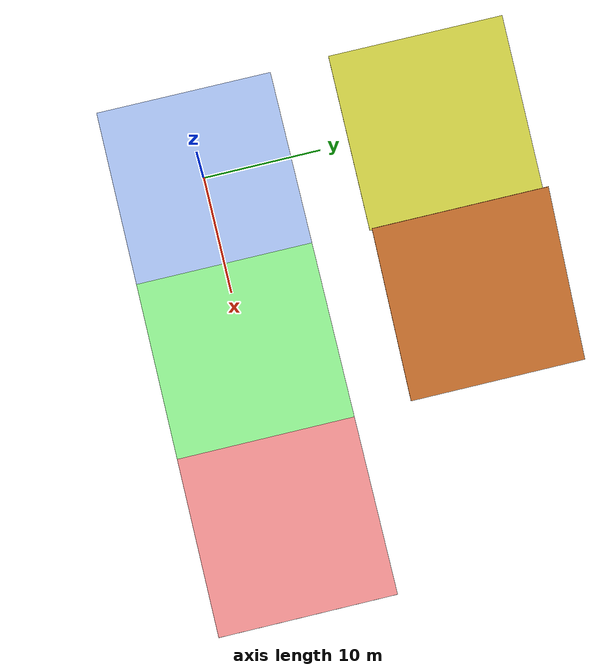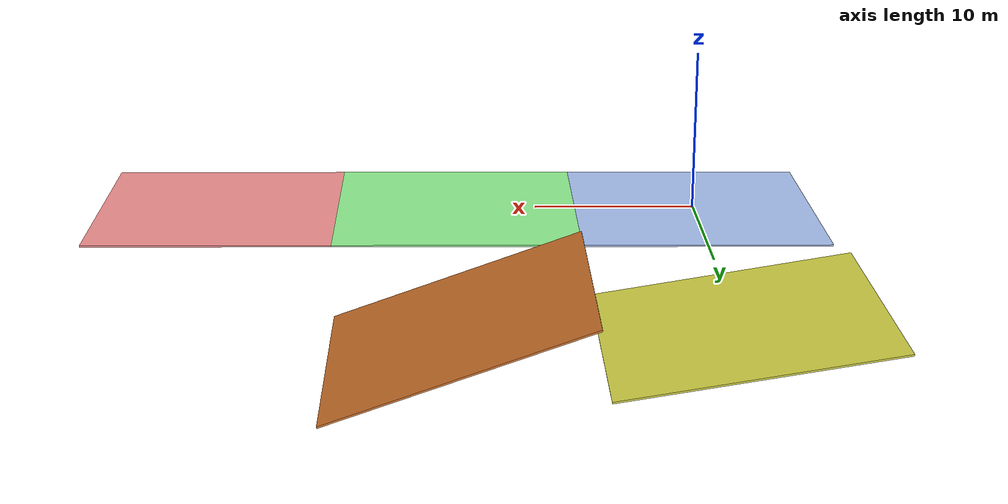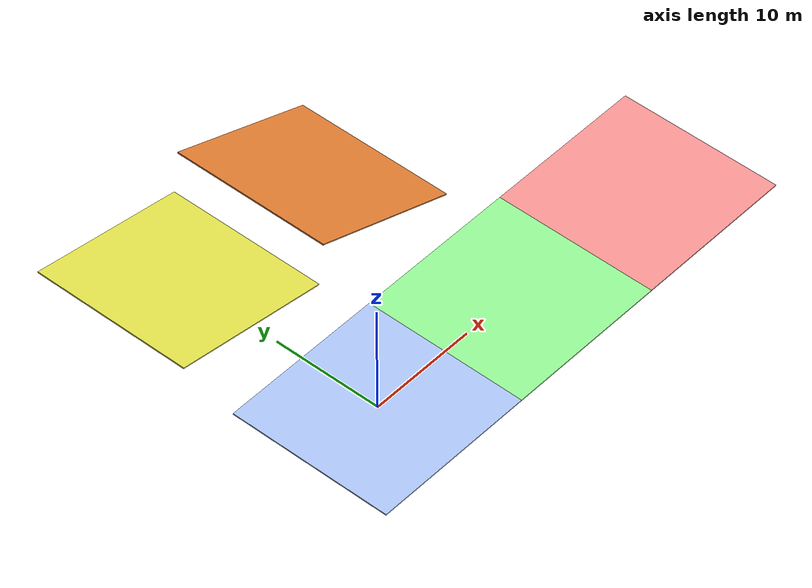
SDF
<sdf version="1.9">
 <world name="variable_friction_world">
  <include><uri>https://fuel.gazebosim.org/1.0/openrobotics/models/Sun</uri></include>
  <model name="low_friction_area">
   <static>true</static>
   <link name="ground_low">
    <collision name="collision">
     <geometry><box><size>15 15 0.1</size></box></geometry>
     <surface><friction><ode><mu>0.1</mu><mu2>0.1</mu2></ode></friction></surface>
    </collision>
    <visual name="visual">
     <geometry><box><size>15 15 0.1</size></box></geometry>
     <material><diffuse>0.7 0.8 1 1</diffuse></material>
    </visual>
   </link>
  </model>
  <model name="medium_friction_area">
   <static>true</static>
   <pose>15 0 0 0 0 0</pose>
   <link name="ground_mid">
    <collision name="collision">
     <geometry><box><size>15 15 0.1</size></box></geometry>
     <surface><friction><ode><mu>0.5</mu><mu2>0.5</mu2></ode></friction></surface>
    </collision>
    <visual name="visual">
     <geometry><box><size>15 15 0.1</size></box></geometry>
     <material><diffuse>0.6 1 0.6 1</diffuse></material>
    </visual>
   </link>
  </model>
  <model name="high_friction_area">
   <static>true</static>
   <pose>30 0 0 0 0 0</pose>
   <link name="ground_high">
    <collision name="collision">
     <geometry><box><size>15 15 0.1</size></box></geometry>
     <surface><friction><ode><mu>1.0</mu><mu2>1.0</mu2></ode></friction></surface>
    </collision>
    <visual name="visual">
     <geometry><box><size>15 15 0.1</size></box></geometry>
     <material><diffuse>1 0.6 0.6 1</diffuse></material>
    </visual>
   </link>
  </model>
  <model name="slope_10_deg">
   <static>true</static>
   <pose>0 20 0 0 0.17 0</pose>
   <link name="slope10">
    <collision name="collision">
     <geometry><box><size>15 15 0.1</size></box></geometry>
     <surface><friction><ode><mu>0.6</mu><mu2>0.6</mu2></ode></friction></surface>
    </collision>
    <visual name="visual">
     <geometry><box><size>15 15 0.1</size></box></geometry>
     <material><diffuse>0.9 0.9 0.3 1</diffuse></material>
    </visual>
   </link>
  </model>
  <model name="slope_20_deg">
   <static>true</static>
   <pose>15 20 0 0 0.35 0</pose>
   <link name="slope20">
    <collision name="collision">
     <geometry><box><size>15 15 0.1</size></box></geometry>
     <surface><friction><ode><mu>0.8</mu><mu2>0.8</mu2></ode></friction></surface>
    </collision>
    <visual name="visual">
     <geometry><box><size>15 15 0.1</size></box></geometry>
     <material><diffuse>0.9 0.5 0.2 1</diffuse></material>
    </visual>
   </link>
  </model>
 </world>
</sdf>
